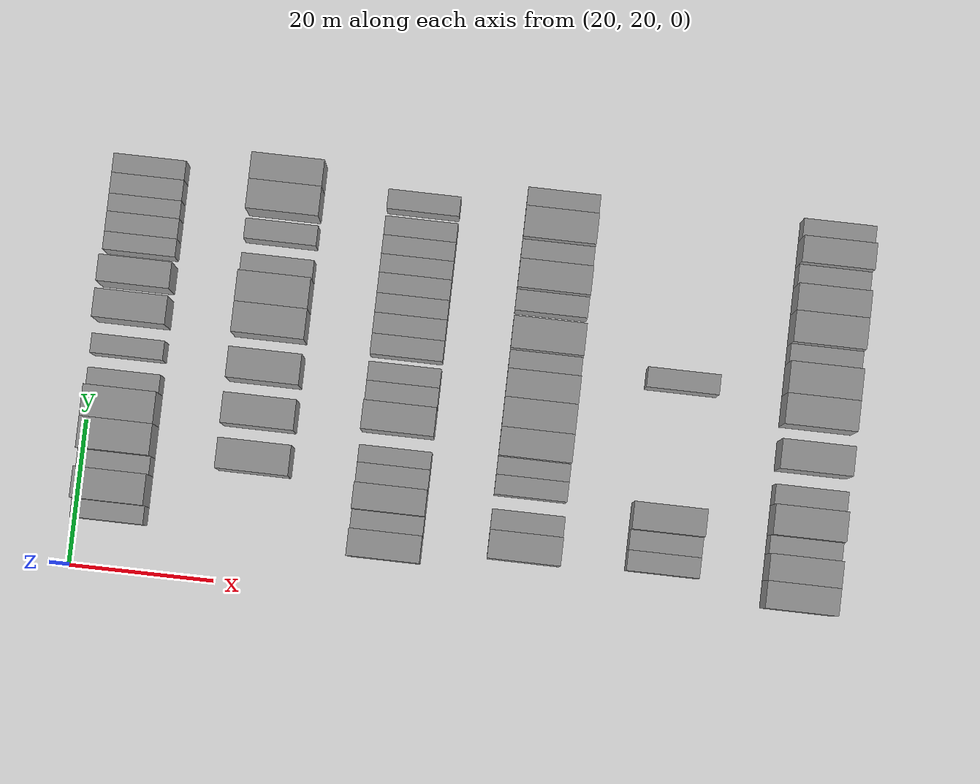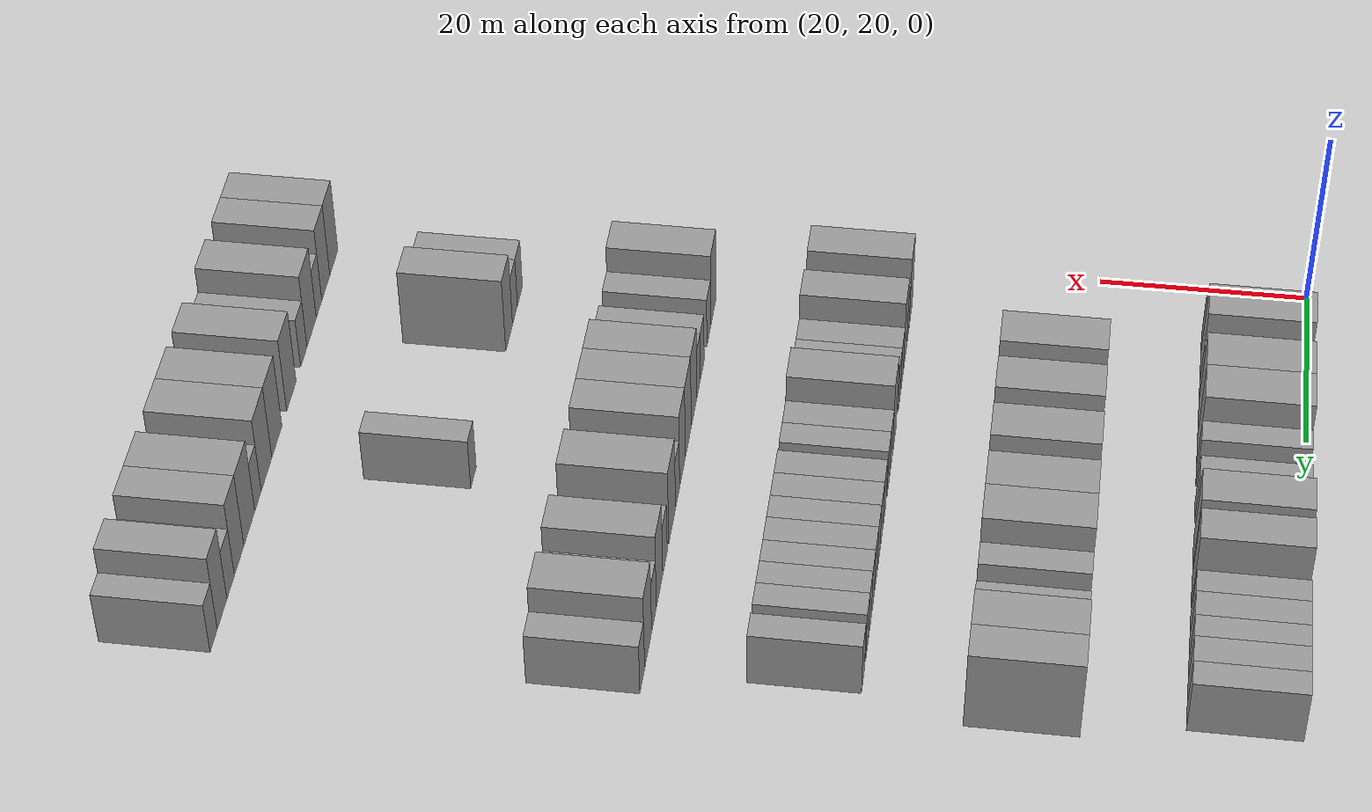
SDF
<sdf version="1.6">
 <world name="default">
  <model name="building_93">
   <static>1</static>
   <pose>25.0000 27.7443 0 0.000000 0.000000 0.000000</pose>
   <link name="link">
    <pose>0 0 3.00 0 0 0</pose>
    <collision name="collision"><geometry><box><size>10.0000 2.5457 6.0000</size></box></geometry></collision>
    <visual name="visual">
     <cast_shadows>0</cast_shadows>
     <geometry><box><size>10.0000 2.5457 6.0000</size></box></geometry>
     <material>
      <script>
       <uri>model://grey_wall/materials/scripts</uri>
       <uri>model://grey_wall/materials/textures</uri>
       <name>vrc/grey_wall</name>
      </script>
     </material>
    </visual>
   </link>
  </model>
  <model name="building_94">
   <static>1</static>
   <pose>25.0000 31.1478 0 0.000000 0.000000 0.000000</pose>
   <link name="link">
    <pose>0 0 4.50 0 0 0</pose>
    <collision name="collision"><geometry><box><size>10.0000 4.2612 9.0000</size></box></geometry></collision>
    <visual name="visual">
     <cast_shadows>0</cast_shadows>
     <geometry><box><size>10.0000 4.2612 9.0000</size></box></geometry>
     <material>
      <script>
       <uri>model://grey_wall/materials/scripts</uri>
       <uri>model://grey_wall/materials/textures</uri>
       <name>vrc/grey_wall</name>
      </script>
     </material>
    </visual>
   </link>
  </model>
  <model name="building_95">
   <static>1</static>
   <pose>25.0000 34.5510 0 0.000000 0.000000 0.000000</pose>
   <link name="link">
    <pose>0 0 3.00 0 0 0</pose>
    <collision name="collision"><geometry><box><size>10.0000 2.5452 6.0000</size></box></geometry></collision>
    <visual name="visual">
     <cast_shadows>0</cast_shadows>
     <geometry><box><size>10.0000 2.5452 6.0000</size></box></geometry>
     <material>
      <script>
       <uri>model://grey_wall/materials/scripts</uri>
       <uri>model://grey_wall/materials/textures</uri>
       <name>vrc/grey_wall</name>
      </script>
     </material>
    </visual>
   </link>
  </model>
  <model name="building_96">
   <static>1</static>
   <pose>25.0000 37.9860 0 0.000000 0.000000 0.000000</pose>
   <link name="link">
    <pose>0 0 4.50 0 0 0</pose>
    <collision name="collision"><geometry><box><size>10.0000 4.3250 9.0000</size></box></geometry></collision>
    <visual name="visual">
     <cast_shadows>0</cast_shadows>
     <geometry><box><size>10.0000 4.3250 9.0000</size></box></geometry>
     <material>
      <script>
       <uri>model://grey_wall/materials/scripts</uri>
       <uri>model://grey_wall/materials/textures</uri>
       <name>vrc/grey_wall</name>
      </script>
     </material>
    </visual>
   </link>
  </model>
  <model name="building_97">
   <static>1</static>
   <pose>25.0000 42.3266 0 0.000000 0.000000 0.000000</pose>
   <link name="link">
    <pose>0 0 4.50 0 0 0</pose>
    <collision name="collision"><geometry><box><size>10.0000 4.3562 9.0000</size></box></geometry></collision>
    <visual name="visual">
     <cast_shadows>0</cast_shadows>
     <geometry><box><size>10.0000 4.3562 9.0000</size></box></geometry>
     <material>
      <script>
       <uri>model://grey_wall/materials/scripts</uri>
       <uri>model://grey_wall/materials/textures</uri>
       <name>vrc/grey_wall</name>
      </script>
     </material>
    </visual>
   </link>
  </model>
  <model name="building_98">
   <static>1</static>
   <pose>25.0000 45.7647 0 0.000000 0.000000 0.000000</pose>
   <link name="link">
    <pose>0 0 3.00 0 0 0</pose>
    <collision name="collision"><geometry><box><size>10.0000 2.5199 6.0000</size></box></geometry></collision>
    <visual name="visual">
     <cast_shadows>0</cast_shadows>
     <geometry><box><size>10.0000 2.5199 6.0000</size></box></geometry>
     <material>
      <script>
       <uri>model://grey_wall/materials/scripts</uri>
       <uri>model://grey_wall/materials/textures</uri>
       <name>vrc/grey_wall</name>
      </script>
     </material>
    </visual>
   </link>
  </model>
  <model name="building_99">
   <static>1</static>
   <pose>25.0000 50.3638 0 0.000000 0.000000 0.000000</pose>
   <link name="link">
    <pose>0 0 3.00 0 0 0</pose>
    <collision name="collision"><geometry><box><size>10.0000 2.6784 6.0000</size></box></geometry></collision>
    <visual name="visual">
     <cast_shadows>0</cast_shadows>
     <geometry><box><size>10.0000 2.6784 6.0000</size></box></geometry>
     <material>
      <script>
       <uri>model://grey_wall/materials/scripts</uri>
       <uri>model://grey_wall/materials/textures</uri>
       <name>vrc/grey_wall</name>
      </script>
     </material>
    </visual>
   </link>
  </model>
  <model name="building_100">
   <static>1</static>
   <pose>25.0000 55.6652 0 0.000000 0.000000 0.000000</pose>
   <link name="link">
    <pose>0 0 4.50 0 0 0</pose>
    <collision name="collision"><geometry><box><size>10.0000 3.9243 9.0000</size></box></geometry></collision>
    <visual name="visual">
     <cast_shadows>0</cast_shadows>
     <geometry><box><size>10.0000 3.9243 9.0000</size></box></geometry>
     <material>
      <script>
       <uri>model://grey_wall/materials/scripts</uri>
       <uri>model://grey_wall/materials/textures</uri>
       <name>vrc/grey_wall</name>
      </script>
     </material>
    </visual>
   </link>
  </model>
  <model name="building_101">
   <static>1</static>
   <pose>25.0000 60.4549 0 0.000000 0.000000 0.000000</pose>
   <link name="link">
    <pose>0 0 4.50 0 0 0</pose>
    <collision name="collision"><geometry><box><size>10.0000 3.6550 9.0000</size></box></geometry></collision>
    <visual name="visual">
     <cast_shadows>0</cast_shadows>
     <geometry><box><size>10.0000 3.6550 9.0000</size></box></geometry>
     <material>
      <script>
       <uri>model://grey_wall/materials/scripts</uri>
       <uri>model://grey_wall/materials/textures</uri>
       <name>vrc/grey_wall</name>
      </script>
     </material>
    </visual>
   </link>
  </model>
  <model name="building_102">
   <static>1</static>
   <pose>25.0000 64.5301 0 0.000000 0.000000 0.000000</pose>
   <link name="link">
    <pose>0 0 3.00 0 0 0</pose>
    <collision name="collision"><geometry><box><size>10.0000 2.4954 6.0000</size></box></geometry></collision>
    <visual name="visual">
     <cast_shadows>0</cast_shadows>
     <geometry><box><size>10.0000 2.4954 6.0000</size></box></geometry>
     <material>
      <script>
       <uri>model://grey_wall/materials/scripts</uri>
       <uri>model://grey_wall/materials/textures</uri>
       <name>vrc/grey_wall</name>
      </script>
     </material>
    </visual>
   </link>
  </model>
  <model name="building_103">
   <static>1</static>
   <pose>25.0000 67.1800 0 0.000000 0.000000 0.000000</pose>
   <link name="link">
    <pose>0 0 3.00 0 0 0</pose>
    <collision name="collision"><geometry><box><size>10.0000 2.8044 6.0000</size></box></geometry></collision>
    <visual name="visual">
     <cast_shadows>0</cast_shadows>
     <geometry><box><size>10.0000 2.8044 6.0000</size></box></geometry>
     <material>
      <script>
       <uri>model://grey_wall/materials/scripts</uri>
       <uri>model://grey_wall/materials/textures</uri>
       <name>vrc/grey_wall</name>
      </script>
     </material>
    </visual>
   </link>
  </model>
  <model name="building_104">
   <static>1</static>
   <pose>25.0000 69.8176 0 0.000000 0.000000 0.000000</pose>
   <link name="link">
    <pose>0 0 3.00 0 0 0</pose>
    <collision name="collision"><geometry><box><size>10.0000 2.4708 6.0000</size></box></geometry></collision>
    <visual name="visual">
     <cast_shadows>0</cast_shadows>
     <geometry><box><size>10.0000 2.4708 6.0000</size></box></geometry>
     <material>
      <script>
       <uri>model://grey_wall/materials/scripts</uri>
       <uri>model://grey_wall/materials/textures</uri>
       <name>vrc/grey_wall</name>
      </script>
     </material>
    </visual>
   </link>
  </model>
  <model name="building_105">
   <static>1</static>
   <pose>25.0000 72.4979 0 0.000000 0.000000 0.000000</pose>
   <link name="link">
    <pose>0 0 3.00 0 0 0</pose>
    <collision name="collision"><geometry><box><size>10.0000 2.8897 6.0000</size></box></geometry></collision>
    <visual name="visual">
     <cast_shadows>0</cast_shadows>
     <geometry><box><size>10.0000 2.8897 6.0000</size></box></geometry>
     <material>
      <script>
       <uri>model://grey_wall/materials/scripts</uri>
       <uri>model://grey_wall/materials/textures</uri>
       <name>vrc/grey_wall</name>
      </script>
     </material>
    </visual>
   </link>
  </model>
  <model name="building_106">
   <static>1</static>
   <pose>25.0000 75.2765 0 0.000000 0.000000 0.000000</pose>
   <link name="link">
    <pose>0 0 3.00 0 0 0</pose>
    <collision name="collision"><geometry><box><size>10.0000 2.6674 6.0000</size></box></geometry></collision>
    <visual name="visual">
     <cast_shadows>0</cast_shadows>
     <geometry><box><size>10.0000 2.6674 6.0000</size></box></geometry>
     <material>
      <script>
       <uri>model://grey_wall/materials/scripts</uri>
       <uri>model://grey_wall/materials/textures</uri>
       <name>vrc/grey_wall</name>
      </script>
     </material>
    </visual>
   </link>
  </model>
  <model name="building_273">
   <static>1</static>
   <pose>44.0000 37.2610 0 0.000000 0.000000 0.000000</pose>
   <link name="link">
    <pose>0 0 4.50 0 0 0</pose>
    <collision name="collision"><geometry><box><size>10.0000 4.1962 9.0000</size></box></geometry></collision>
    <visual name="visual">
     <cast_shadows>0</cast_shadows>
     <geometry><box><size>10.0000 4.1962 9.0000</size></box></geometry>
     <material>
      <script>
       <uri>model://grey_wall/materials/scripts</uri>
       <uri>model://grey_wall/materials/textures</uri>
       <name>vrc/grey_wall</name>
      </script>
     </material>
    </visual>
   </link>
  </model>
  <model name="building_274">
   <static>1</static>
   <pose>44.0000 43.4618 0 0.000000 0.000000 0.000000</pose>
   <link name="link">
    <pose>0 0 4.50 0 0 0</pose>
    <collision name="collision"><geometry><box><size>10.0000 4.2055 9.0000</size></box></geometry></collision>
    <visual name="visual">
     <cast_shadows>0</cast_shadows>
     <geometry><box><size>10.0000 4.2055 9.0000</size></box></geometry>
     <material>
      <script>
       <uri>model://grey_wall/materials/scripts</uri>
       <uri>model://grey_wall/materials/textures</uri>
       <name>vrc/grey_wall</name>
      </script>
     </material>
    </visual>
   </link>
  </model>
  <model name="building_275">
   <static>1</static>
   <pose>44.0000 49.6815 0 0.000000 0.000000 0.000000</pose>
   <link name="link">
    <pose>0 0 4.50 0 0 0</pose>
    <collision name="collision"><geometry><box><size>10.0000 4.2341 9.0000</size></box></geometry></collision>
    <visual name="visual">
     <cast_shadows>0</cast_shadows>
     <geometry><box><size>10.0000 4.2341 9.0000</size></box></geometry>
     <material>
      <script>
       <uri>model://grey_wall/materials/scripts</uri>
       <uri>model://grey_wall/materials/textures</uri>
       <name>vrc/grey_wall</name>
      </script>
     </material>
    </visual>
   </link>
  </model>
  <model name="building_276">
   <static>1</static>
   <pose>44.0000 55.8992 0 0.000000 0.000000 0.000000</pose>
   <link name="link">
    <pose>0 0 4.50 0 0 0</pose>
    <collision name="collision"><geometry><box><size>10.0000 4.2013 9.0000</size></box></geometry></collision>
    <visual name="visual">
     <cast_shadows>0</cast_shadows>
     <geometry><box><size>10.0000 4.2013 9.0000</size></box></geometry>
     <material>
      <script>
       <uri>model://grey_wall/materials/scripts</uri>
       <uri>model://grey_wall/materials/textures</uri>
       <name>vrc/grey_wall</name>
      </script>
     </material>
    </visual>
   </link>
  </model>
  <model name="building_277">
   <static>1</static>
   <pose>44.0000 60.1384 0 0.000000 0.000000 0.000000</pose>
   <link name="link">
    <pose>0 0 4.50 0 0 0</pose>
    <collision name="collision"><geometry><box><size>10.0000 4.2772 9.0000</size></box></geometry></collision>
    <visual name="visual">
     <cast_shadows>0</cast_shadows>
     <geometry><box><size>10.0000 4.2772 9.0000</size></box></geometry>
     <material>
      <script>
       <uri>model://grey_wall/materials/scripts</uri>
       <uri>model://grey_wall/materials/textures</uri>
       <name>vrc/grey_wall</name>
      </script>
     </material>
    </visual>
   </link>
  </model>
  <model name="building_278">
   <static>1</static>
   <pose>44.0000 63.6222 0 0.000000 0.000000 0.000000</pose>
   <link name="link">
    <pose>0 0 3.00 0 0 0</pose>
    <collision name="collision"><geometry><box><size>10.0000 2.6903 6.0000</size></box></geometry></collision>
    <visual name="visual">
     <cast_shadows>0</cast_shadows>
     <geometry><box><size>10.0000 2.6903 6.0000</size></box></geometry>
     <material>
      <script>
       <uri>model://grey_wall/materials/scripts</uri>
       <uri>model://grey_wall/materials/textures</uri>
       <name>vrc/grey_wall</name>
      </script>
     </material>
    </visual>
   </link>
  </model>
  <model name="building_279">
   <static>1</static>
   <pose>44.0000 68.3635 0 0.000000 0.000000 0.000000</pose>
   <link name="link">
    <pose>0 0 3.00 0 0 0</pose>
    <collision name="collision"><geometry><box><size>10.0000 2.7923 6.0000</size></box></geometry></collision>
    <visual name="visual">
     <cast_shadows>0</cast_shadows>
     <geometry><box><size>10.0000 2.7923 6.0000</size></box></geometry>
     <material>
      <script>
       <uri>model://grey_wall/materials/scripts</uri>
       <uri>model://grey_wall/materials/textures</uri>
       <name>vrc/grey_wall</name>
      </script>
     </material>
    </visual>
   </link>
  </model>
  <model name="building_280">
   <static>1</static>
   <pose>44.0000 72.7982 0 0.000000 0.000000 0.000000</pose>
   <link name="link">
    <pose>0 0 4.50 0 0 0</pose>
    <collision name="collision"><geometry><box><size>10.0000 4.0771 9.0000</size></box></geometry></collision>
    <visual name="visual">
     <cast_shadows>0</cast_shadows>
     <geometry><box><size>10.0000 4.0771 9.0000</size></box></geometry>
     <material>
      <script>
       <uri>model://grey_wall/materials/scripts</uri>
       <uri>model://grey_wall/materials/textures</uri>
       <name>vrc/grey_wall</name>
      </script>
     </material>
    </visual>
   </link>
  </model>
  <model name="building_281">
   <static>1</static>
   <pose>44.0000 76.6712 0 0.000000 0.000000 0.000000</pose>
   <link name="link">
    <pose>0 0 4.50 0 0 0</pose>
    <collision name="collision"><geometry><box><size>10.0000 3.6688 9.0000</size></box></geometry></collision>
    <visual name="visual">
     <cast_shadows>0</cast_shadows>
     <geometry><box><size>10.0000 3.6688 9.0000</size></box></geometry>
     <material>
      <script>
       <uri>model://grey_wall/materials/scripts</uri>
       <uri>model://grey_wall/materials/textures</uri>
       <name>vrc/grey_wall</name>
      </script>
     </material>
    </visual>
   </link>
  </model>
  <model name="building_453">
   <static>1</static>
   <pose>63.0000 27.2914 0 0.000000 0.000000 0.000000</pose>
   <link name="link">
    <pose>0 0 4.50 0 0 0</pose>
    <collision name="collision"><geometry><box><size>10.0000 3.7400 9.0000</size></box></geometry></collision>
    <visual name="visual">
     <cast_shadows>0</cast_shadows>
     <geometry><box><size>10.0000 3.7400 9.0000</size></box></geometry>
     <material>
      <script>
       <uri>model://grey_wall/materials/scripts</uri>
       <uri>model://grey_wall/materials/textures</uri>
       <name>vrc/grey_wall</name>
      </script>
     </material>
    </visual>
   </link>
  </model>
  <model name="building_454">
   <static>1</static>
   <pose>63.0000 30.4856 0 0.000000 0.000000 0.000000</pose>
   <link name="link">
    <pose>0 0 3.00 0 0 0</pose>
    <collision name="collision"><geometry><box><size>10.0000 2.6486 6.0000</size></box></geometry></collision>
    <visual name="visual">
     <cast_shadows>0</cast_shadows>
     <geometry><box><size>10.0000 2.6486 6.0000</size></box></geometry>
     <material>
      <script>
       <uri>model://grey_wall/materials/scripts</uri>
       <uri>model://grey_wall/materials/textures</uri>
       <name>vrc/grey_wall</name>
      </script>
     </material>
    </visual>
   </link>
  </model>
  <model name="building_455">
   <static>1</static>
   <pose>63.0000 33.6200 0 0.000000 0.000000 0.000000</pose>
   <link name="link">
    <pose>0 0 4.50 0 0 0</pose>
    <collision name="collision"><geometry><box><size>10.0000 3.6201 9.0000</size></box></geometry></collision>
    <visual name="visual">
     <cast_shadows>0</cast_shadows>
     <geometry><box><size>10.0000 3.6201 9.0000</size></box></geometry>
     <material>
      <script>
       <uri>model://grey_wall/materials/scripts</uri>
       <uri>model://grey_wall/materials/textures</uri>
       <name>vrc/grey_wall</name>
      </script>
     </material>
    </visual>
   </link>
  </model>
  <model name="building_456">
   <static>1</static>
   <pose>63.0000 36.8506 0 0.000000 0.000000 0.000000</pose>
   <link name="link">
    <pose>0 0 3.00 0 0 0</pose>
    <collision name="collision"><geometry><box><size>10.0000 2.8411 6.0000</size></box></geometry></collision>
    <visual name="visual">
     <cast_shadows>0</cast_shadows>
     <geometry><box><size>10.0000 2.8411 6.0000</size></box></geometry>
     <material>
      <script>
       <uri>model://grey_wall/materials/scripts</uri>
       <uri>model://grey_wall/materials/textures</uri>
       <name>vrc/grey_wall</name>
      </script>
     </material>
    </visual>
   </link>
  </model>
  <model name="building_457">
   <static>1</static>
   <pose>63.0000 39.4727 0 0.000000 0.000000 0.000000</pose>
   <link name="link">
    <pose>0 0 3.00 0 0 0</pose>
    <collision name="collision"><geometry><box><size>10.0000 2.4032 6.0000</size></box></geometry></collision>
    <visual name="visual">
     <cast_shadows>0</cast_shadows>
     <geometry><box><size>10.0000 2.4032 6.0000</size></box></geometry>
     <material>
      <script>
       <uri>model://grey_wall/materials/scripts</uri>
       <uri>model://grey_wall/materials/textures</uri>
       <name>vrc/grey_wall</name>
      </script>
     </material>
    </visual>
   </link>
  </model>
  <model name="building_458">
   <static>1</static>
   <pose>63.0000 44.6561 0 0.000000 0.000000 0.000000</pose>
   <link name="link">
    <pose>0 0 4.50 0 0 0</pose>
    <collision name="collision"><geometry><box><size>10.0000 3.9635 9.0000</size></box></geometry></collision>
    <visual name="visual">
     <cast_shadows>0</cast_shadows>
     <geometry><box><size>10.0000 3.9635 9.0000</size></box></geometry>
     <material>
      <script>
       <uri>model://grey_wall/materials/scripts</uri>
       <uri>model://grey_wall/materials/textures</uri>
       <name>vrc/grey_wall</name>
      </script>
     </material>
    </visual>
   </link>
  </model>
  <model name="building_459">
   <static>1</static>
   <pose>63.0000 48.0695 0 0.000000 0.000000 0.000000</pose>
   <link name="link">
    <pose>0 0 3.00 0 0 0</pose>
    <collision name="collision"><geometry><box><size>10.0000 2.8632 6.0000</size></box></geometry></collision>
    <visual name="visual">
     <cast_shadows>0</cast_shadows>
     <geometry><box><size>10.0000 2.8632 6.0000</size></box></geometry>
     <material>
      <script>
       <uri>model://grey_wall/materials/scripts</uri>
       <uri>model://grey_wall/materials/textures</uri>
       <name>vrc/grey_wall</name>
      </script>
     </material>
    </visual>
   </link>
  </model>
  <model name="building_460">
   <static>1</static>
   <pose>63.0000 50.8109 0 0.000000 0.000000 0.000000</pose>
   <link name="link">
    <pose>0 0 3.00 0 0 0</pose>
    <collision name="collision"><geometry><box><size>10.0000 2.6197 6.0000</size></box></geometry></collision>
    <visual name="visual">
     <cast_shadows>0</cast_shadows>
     <geometry><box><size>10.0000 2.6197 6.0000</size></box></geometry>
     <material>
      <script>
       <uri>model://grey_wall/materials/scripts</uri>
       <uri>model://grey_wall/materials/textures</uri>
       <name>vrc/grey_wall</name>
      </script>
     </material>
    </visual>
   </link>
  </model>
  <model name="building_461">
   <static>1</static>
   <pose>63.0000 54.5580 0 0.000000 0.000000 0.000000</pose>
   <link name="link">
    <pose>0 0 3.00 0 0 0</pose>
    <collision name="collision"><geometry><box><size>10.0000 2.8744 6.0000</size></box></geometry></collision>
    <visual name="visual">
     <cast_shadows>0</cast_shadows>
     <geometry><box><size>10.0000 2.8744 6.0000</size></box></geometry>
     <material>
      <script>
       <uri>model://grey_wall/materials/scripts</uri>
       <uri>model://grey_wall/materials/textures</uri>
       <name>vrc/grey_wall</name>
      </script>
     </material>
    </visual>
   </link>
  </model>
  <model name="building_462">
   <static>1</static>
   <pose>63.0000 57.4362 0 0.000000 0.000000 0.000000</pose>
   <link name="link">
    <pose>0 0 3.00 0 0 0</pose>
    <collision name="collision"><geometry><box><size>10.0000 2.8820 6.0000</size></box></geometry></collision>
    <visual name="visual">
     <cast_shadows>0</cast_shadows>
     <geometry><box><size>10.0000 2.8820 6.0000</size></box></geometry>
     <material>
      <script>
       <uri>model://grey_wall/materials/scripts</uri>
       <uri>model://grey_wall/materials/textures</uri>
       <name>vrc/grey_wall</name>
      </script>
     </material>
    </visual>
   </link>
  </model>
  <model name="building_463">
   <static>1</static>
   <pose>63.0000 60.2301 0 0.000000 0.000000 0.000000</pose>
   <link name="link">
    <pose>0 0 3.00 0 0 0</pose>
    <collision name="collision"><geometry><box><size>10.0000 2.7058 6.0000</size></box></geometry></collision>
    <visual name="visual">
     <cast_shadows>0</cast_shadows>
     <geometry><box><size>10.0000 2.7058 6.0000</size></box></geometry>
     <material>
      <script>
       <uri>model://grey_wall/materials/scripts</uri>
       <uri>model://grey_wall/materials/textures</uri>
       <name>vrc/grey_wall</name>
      </script>
     </material>
    </visual>
   </link>
  </model>
  <model name="building_464">
   <static>1</static>
   <pose>63.0000 62.9954 0 0.000000 0.000000 0.000000</pose>
   <link name="link">
    <pose>0 0 3.00 0 0 0</pose>
    <collision name="collision"><geometry><box><size>10.0000 2.8249 6.0000</size></box></geometry></collision>
    <visual name="visual">
     <cast_shadows>0</cast_shadows>
     <geometry><box><size>10.0000 2.8249 6.0000</size></box></geometry>
     <material>
      <script>
       <uri>model://grey_wall/materials/scripts</uri>
       <uri>model://grey_wall/materials/textures</uri>
       <name>vrc/grey_wall</name>
      </script>
     </material>
    </visual>
   </link>
  </model>
  <model name="building_465">
   <static>1</static>
   <pose>63.0000 65.6941 0 0.000000 0.000000 0.000000</pose>
   <link name="link">
    <pose>0 0 3.00 0 0 0</pose>
    <collision name="collision"><geometry><box><size>10.0000 2.5725 6.0000</size></box></geometry></collision>
    <visual name="visual">
     <cast_shadows>0</cast_shadows>
     <geometry><box><size>10.0000 2.5725 6.0000</size></box></geometry>
     <material>
      <script>
       <uri>model://grey_wall/materials/scripts</uri>
       <uri>model://grey_wall/materials/textures</uri>
       <name>vrc/grey_wall</name>
      </script>
     </material>
    </visual>
   </link>
  </model>
  <model name="building_466">
   <static>1</static>
   <pose>63.0000 68.2875 0 0.000000 0.000000 0.000000</pose>
   <link name="link">
    <pose>0 0 3.00 0 0 0</pose>
    <collision name="collision"><geometry><box><size>10.0000 2.6143 6.0000</size></box></geometry></collision>
    <visual name="visual">
     <cast_shadows>0</cast_shadows>
     <geometry><box><size>10.0000 2.6143 6.0000</size></box></geometry>
     <material>
      <script>
       <uri>model://grey_wall/materials/scripts</uri>
       <uri>model://grey_wall/materials/textures</uri>
       <name>vrc/grey_wall</name>
      </script>
     </material>
    </visual>
   </link>
  </model>
  <model name="building_467">
   <static>1</static>
   <pose>63.0000 70.8988 0 0.000000 0.000000 0.000000</pose>
   <link name="link">
    <pose>0 0 3.00 0 0 0</pose>
    <collision name="collision"><geometry><box><size>10.0000 2.6081 6.0000</size></box></geometry></collision>
    <visual name="visual">
     <cast_shadows>0</cast_shadows>
     <geometry><box><size>10.0000 2.6081 6.0000</size></box></geometry>
     <material>
      <script>
       <uri>model://grey_wall/materials/scripts</uri>
       <uri>model://grey_wall/materials/textures</uri>
       <name>vrc/grey_wall</name>
      </script>
     </material>
    </visual>
   </link>
  </model>
  <model name="building_468">
   <static>1</static>
   <pose>63.0000 74.5586 0 0.000000 0.000000 0.000000</pose>
   <link name="link">
    <pose>0 0 3.00 0 0 0</pose>
    <collision name="collision"><geometry><box><size>10.0000 2.7117 6.0000</size></box></geometry></collision>
    <visual name="visual">
     <cast_shadows>0</cast_shadows>
     <geometry><box><size>10.0000 2.7117 6.0000</size></box></geometry>
     <material>
      <script>
       <uri>model://grey_wall/materials/scripts</uri>
       <uri>model://grey_wall/materials/textures</uri>
       <name>vrc/grey_wall</name>
      </script>
     </material>
    </visual>
   </link>
  </model>
  <model name="building_641">
   <static>1</static>
   <pose>82.0000 29.1589 0 0.000000 0.000000 0.000000</pose>
   <link name="link">
    <pose>0 0 4.50 0 0 0</pose>
    <collision name="collision"><geometry><box><size>10.0000 3.9074 9.0000</size></box></geometry></collision>
    <visual name="visual">
     <cast_shadows>0</cast_shadows>
     <geometry><box><size>10.0000 3.9074 9.0000</size></box></geometry>
     <material>
      <script>
       <uri>model://grey_wall/materials/scripts</uri>
       <uri>model://grey_wall/materials/textures</uri>
       <name>vrc/grey_wall</name>
      </script>
     </material>
    </visual>
   </link>
  </model>
  <model name="building_642">
   <static>1</static>
   <pose>82.0000 32.5577 0 0.000000 0.000000 0.000000</pose>
   <link name="link">
    <pose>0 0 3.00 0 0 0</pose>
    <collision name="collision"><geometry><box><size>10.0000 2.8900 6.0000</size></box></geometry></collision>
    <visual name="visual">
     <cast_shadows>0</cast_shadows>
     <geometry><box><size>10.0000 2.8900 6.0000</size></box></geometry>
     <material>
      <script>
       <uri>model://grey_wall/materials/scripts</uri>
       <uri>model://grey_wall/materials/textures</uri>
       <name>vrc/grey_wall</name>
      </script>
     </material>
    </visual>
   </link>
  </model>
  <model name="building_643">
   <static>1</static>
   <pose>82.0000 37.3732 0 0.000000 0.000000 0.000000</pose>
   <link name="link">
    <pose>0 0 3.00 0 0 0</pose>
    <collision name="collision"><geometry><box><size>10.0000 2.7411 6.0000</size></box></geometry></collision>
    <visual name="visual">
     <cast_shadows>0</cast_shadows>
     <geometry><box><size>10.0000 2.7411 6.0000</size></box></geometry>
     <material>
      <script>
       <uri>model://grey_wall/materials/scripts</uri>
       <uri>model://grey_wall/materials/textures</uri>
       <name>vrc/grey_wall</name>
      </script>
     </material>
    </visual>
   </link>
  </model>
  <model name="building_644">
   <static>1</static>
   <pose>82.0000 39.9740 0 0.000000 0.000000 0.000000</pose>
   <link name="link">
    <pose>0 0 3.00 0 0 0</pose>
    <collision name="collision"><geometry><box><size>10.0000 2.4605 6.0000</size></box></geometry></collision>
    <visual name="visual">
     <cast_shadows>0</cast_shadows>
     <geometry><box><size>10.0000 2.4605 6.0000</size></box></geometry>
     <material>
      <script>
       <uri>model://grey_wall/materials/scripts</uri>
       <uri>model://grey_wall/materials/textures</uri>
       <name>vrc/grey_wall</name>
      </script>
     </material>
    </visual>
   </link>
  </model>
  <model name="building_645">
   <static>1</static>
   <pose>82.0000 43.1719 0 0.000000 0.000000 0.000000</pose>
   <link name="link">
    <pose>0 0 4.50 0 0 0</pose>
    <collision name="collision"><geometry><box><size>10.0000 3.9352 9.0000</size></box></geometry></collision>
    <visual name="visual">
     <cast_shadows>0</cast_shadows>
     <geometry><box><size>10.0000 3.9352 9.0000</size></box></geometry>
     <material>
      <script>
       <uri>model://grey_wall/materials/scripts</uri>
       <uri>model://grey_wall/materials/textures</uri>
       <name>vrc/grey_wall</name>
      </script>
     </material>
    </visual>
   </link>
  </model>
  <model name="building_646">
   <static>1</static>
   <pose>82.0000 47.1830 0 0.000000 0.000000 0.000000</pose>
   <link name="link">
    <pose>0 0 4.50 0 0 0</pose>
    <collision name="collision"><geometry><box><size>10.0000 4.0870 9.0000</size></box></geometry></collision>
    <visual name="visual">
     <cast_shadows>0</cast_shadows>
     <geometry><box><size>10.0000 4.0870 9.0000</size></box></geometry>
     <material>
      <script>
       <uri>model://grey_wall/materials/scripts</uri>
       <uri>model://grey_wall/materials/textures</uri>
       <name>vrc/grey_wall</name>
      </script>
     </material>
    </visual>
   </link>
  </model>
  <model name="building_647">
   <static>1</static>
   <pose>82.0000 51.1674 0 0.000000 0.000000 0.000000</pose>
   <link name="link">
    <pose>0 0 4.50 0 0 0</pose>
    <collision name="collision"><geometry><box><size>10.0000 3.8818 9.0000</size></box></geometry></collision>
    <visual name="visual">
     <cast_shadows>0</cast_shadows>
     <geometry><box><size>10.0000 3.8818 9.0000</size></box></geometry>
     <material>
      <script>
       <uri>model://grey_wall/materials/scripts</uri>
       <uri>model://grey_wall/materials/textures</uri>
       <name>vrc/grey_wall</name>
      </script>
     </material>
    </visual>
   </link>
  </model>
  <model name="building_648">
   <static>1</static>
   <pose>82.0000 54.4906 0 0.000000 0.000000 0.000000</pose>
   <link name="link">
    <pose>0 0 3.00 0 0 0</pose>
    <collision name="collision"><geometry><box><size>10.0000 2.7648 6.0000</size></box></geometry></collision>
    <visual name="visual">
     <cast_shadows>0</cast_shadows>
     <geometry><box><size>10.0000 2.7648 6.0000</size></box></geometry>
     <material>
      <script>
       <uri>model://grey_wall/materials/scripts</uri>
       <uri>model://grey_wall/materials/textures</uri>
       <name>vrc/grey_wall</name>
      </script>
     </material>
    </visual>
   </link>
  </model>
  <model name="building_649">
   <static>1</static>
   <pose>82.0000 58.0892 0 0.000000 0.000000 0.000000</pose>
   <link name="link">
    <pose>0 0 4.50 0 0 0</pose>
    <collision name="collision"><geometry><box><size>10.0000 4.4324 9.0000</size></box></geometry></collision>
    <visual name="visual">
     <cast_shadows>0</cast_shadows>
     <geometry><box><size>10.0000 4.4324 9.0000</size></box></geometry>
     <material>
      <script>
       <uri>model://grey_wall/materials/scripts</uri>
       <uri>model://grey_wall/materials/textures</uri>
       <name>vrc/grey_wall</name>
      </script>
     </material>
    </visual>
   </link>
  </model>
  <model name="building_650">
   <static>1</static>
   <pose>82.0000 62.7515 0 0.000000 0.000000 0.000000</pose>
   <link name="link">
    <pose>0 0 3.00 0 0 0</pose>
    <collision name="collision"><geometry><box><size>10.0000 2.8923 6.0000</size></box></geometry></collision>
    <visual name="visual">
     <cast_shadows>0</cast_shadows>
     <geometry><box><size>10.0000 2.8923 6.0000</size></box></geometry>
     <material>
      <script>
       <uri>model://grey_wall/materials/scripts</uri>
       <uri>model://grey_wall/materials/textures</uri>
       <name>vrc/grey_wall</name>
      </script>
     </material>
    </visual>
   </link>
  </model>
  <model name="building_651">
   <static>1</static>
   <pose>82.0000 66.1894 0 0.000000 0.000000 0.000000</pose>
   <link name="link">
    <pose>0 0 4.50 0 0 0</pose>
    <collision name="collision"><geometry><box><size>10.0000 3.9835 9.0000</size></box></geometry></collision>
    <visual name="visual">
     <cast_shadows>0</cast_shadows>
     <geometry><box><size>10.0000 3.9835 9.0000</size></box></geometry>
     <material>
      <script>
       <uri>model://grey_wall/materials/scripts</uri>
       <uri>model://grey_wall/materials/textures</uri>
       <name>vrc/grey_wall</name>
      </script>
     </material>
    </visual>
   </link>
  </model>
  <model name="building_652">
   <static>1</static>
   <pose>82.0000 69.6668 0 0.000000 0.000000 0.000000</pose>
   <link name="link">
    <pose>0 0 3.00 0 0 0</pose>
    <collision name="collision"><geometry><box><size>10.0000 2.9712 6.0000</size></box></geometry></collision>
    <visual name="visual">
     <cast_shadows>0</cast_shadows>
     <geometry><box><size>10.0000 2.9712 6.0000</size></box></geometry>
     <material>
      <script>
       <uri>model://grey_wall/materials/scripts</uri>
       <uri>model://grey_wall/materials/textures</uri>
       <name>vrc/grey_wall</name>
      </script>
     </material>
    </visual>
   </link>
  </model>
  <model name="building_653">
   <static>1</static>
   <pose>82.0000 73.2908 0 0.000000 0.000000 0.000000</pose>
   <link name="link">
    <pose>0 0 4.50 0 0 0</pose>
    <collision name="collision"><geometry><box><size>10.0000 4.2769 9.0000</size></box></geometry></collision>
    <visual name="visual">
     <cast_shadows>0</cast_shadows>
     <geometry><box><size>10.0000 4.2769 9.0000</size></box></geometry>
     <material>
      <script>
       <uri>model://grey_wall/materials/scripts</uri>
       <uri>model://grey_wall/materials/textures</uri>
       <name>vrc/grey_wall</name>
      </script>
     </material>
    </visual>
   </link>
  </model>
  <model name="building_654">
   <static>1</static>
   <pose>82.0000 76.8844 0 0.000000 0.000000 0.000000</pose>
   <link name="link">
    <pose>0 0 3.00 0 0 0</pose>
    <collision name="collision"><geometry><box><size>10.0000 2.9103 6.0000</size></box></geometry></collision>
    <visual name="visual">
     <cast_shadows>0</cast_shadows>
     <geometry><box><size>10.0000 2.9103 6.0000</size></box></geometry>
     <material>
      <script>
       <uri>model://grey_wall/materials/scripts</uri>
       <uri>model://grey_wall/materials/textures</uri>
       <name>vrc/grey_wall</name>
      </script>
     </material>
    </visual>
   </link>
  </model>
  <model name="building_819">
   <static>1</static>
   <pose>101.0000 29.1254 0 0.000000 0.000000 0.000000</pose>
   <link name="link">
    <pose>0 0 3.00 0 0 0</pose>
    <collision name="collision"><geometry><box><size>10.0000 2.8334 6.0000</size></box></geometry></collision>
    <visual name="visual">
     <cast_shadows>0</cast_shadows>
     <geometry><box><size>10.0000 2.8334 6.0000</size></box></geometry>
     <material>
      <script>
       <uri>model://grey_wall/materials/scripts</uri>
       <uri>model://grey_wall/materials/textures</uri>
       <name>vrc/grey_wall</name>
      </script>
     </material>
    </visual>
   </link>
  </model>
  <model name="building_820">
   <static>1</static>
   <pose>101.0000 31.9287 0 0.000000 0.000000 0.000000</pose>
   <link name="link">
    <pose>0 0 3.00 0 0 0</pose>
    <collision name="collision"><geometry><box><size>10.0000 2.7732 6.0000</size></box></geometry></collision>
    <visual name="visual">
     <cast_shadows>0</cast_shadows>
     <geometry><box><size>10.0000 2.7732 6.0000</size></box></geometry>
     <material>
      <script>
       <uri>model://grey_wall/materials/scripts</uri>
       <uri>model://grey_wall/materials/textures</uri>
       <name>vrc/grey_wall</name>
      </script>
     </material>
    </visual>
   </link>
  </model>
  <model name="building_821">
   <static>1</static>
   <pose>101.0000 35.2038 0 0.000000 0.000000 0.000000</pose>
   <link name="link">
    <pose>0 0 4.50 0 0 0</pose>
    <collision name="collision"><geometry><box><size>10.0000 3.7769 9.0000</size></box></geometry></collision>
    <visual name="visual">
     <cast_shadows>0</cast_shadows>
     <geometry><box><size>10.0000 3.7769 9.0000</size></box></geometry>
     <material>
      <script>
       <uri>model://grey_wall/materials/scripts</uri>
       <uri>model://grey_wall/materials/textures</uri>
       <name>vrc/grey_wall</name>
      </script>
     </material>
    </visual>
   </link>
  </model>
  <model name="building_822">
   <static>1</static>
   <pose>101.0000 54.2547 0 0.000000 0.000000 0.000000</pose>
   <link name="link">
    <pose>0 0 3.00 0 0 0</pose>
    <collision name="collision"><geometry><box><size>10.0000 2.7750 6.0000</size></box></geometry></collision>
    <visual name="visual">
     <cast_shadows>0</cast_shadows>
     <geometry><box><size>10.0000 2.7750 6.0000</size></box></geometry>
     <material>
      <script>
       <uri>model://grey_wall/materials/scripts</uri>
       <uri>model://grey_wall/materials/textures</uri>
       <name>vrc/grey_wall</name>
      </script>
     </material>
    </visual>
   </link>
  </model>
  <model name="building_985">
   <static>1</static>
   <pose>120.0000 26.5953 0 0.000000 0.000000 0.000000</pose>
   <link name="link">
    <pose>0 0 4.50 0 0 0</pose>
    <collision name="collision"><geometry><box><size>10.0000 3.7649 9.0000</size></box></geometry></collision>
    <visual name="visual">
     <cast_shadows>0</cast_shadows>
     <geometry><box><size>10.0000 3.7649 9.0000</size></box></geometry>
     <material>
      <script>
       <uri>model://grey_wall/materials/scripts</uri>
       <uri>model://grey_wall/materials/textures</uri>
       <name>vrc/grey_wall</name>
      </script>
     </material>
    </visual>
   </link>
  </model>
  <model name="building_986">
   <static>1</static>
   <pose>120.0000 30.3191 0 0.000000 0.000000 0.000000</pose>
   <link name="link">
    <pose>0 0 4.50 0 0 0</pose>
    <collision name="collision"><geometry><box><size>10.0000 3.6825 9.0000</size></box></geometry></collision>
    <visual name="visual">
     <cast_shadows>0</cast_shadows>
     <geometry><box><size>10.0000 3.6825 9.0000</size></box></geometry>
     <material>
      <script>
       <uri>model://grey_wall/materials/scripts</uri>
       <uri>model://grey_wall/materials/textures</uri>
       <name>vrc/grey_wall</name>
      </script>
     </material>
    </visual>
   </link>
  </model>
  <model name="building_987">
   <static>1</static>
   <pose>120.0000 33.4351 0 0.000000 0.000000 0.000000</pose>
   <link name="link">
    <pose>0 0 3.00 0 0 0</pose>
    <collision name="collision"><geometry><box><size>10.0000 2.5495 6.0000</size></box></geometry></collision>
    <visual name="visual">
     <cast_shadows>0</cast_shadows>
     <geometry><box><size>10.0000 2.5495 6.0000</size></box></geometry>
     <material>
      <script>
       <uri>model://grey_wall/materials/scripts</uri>
       <uri>model://grey_wall/materials/textures</uri>
       <name>vrc/grey_wall</name>
      </script>
     </material>
    </visual>
   </link>
  </model>
  <model name="building_988">
   <static>1</static>
   <pose>120.0000 36.7935 0 0.000000 0.000000 0.000000</pose>
   <link name="link">
    <pose>0 0 4.50 0 0 0</pose>
    <collision name="collision"><geometry><box><size>10.0000 4.1673 9.0000</size></box></geometry></collision>
    <visual name="visual">
     <cast_shadows>0</cast_shadows>
     <geometry><box><size>10.0000 4.1673 9.0000</size></box></geometry>
     <material>
      <script>
       <uri>model://grey_wall/materials/scripts</uri>
       <uri>model://grey_wall/materials/textures</uri>
       <name>vrc/grey_wall</name>
      </script>
     </material>
    </visual>
   </link>
  </model>
  <model name="building_989">
   <static>1</static>
   <pose>120.0000 40.2825 0 0.000000 0.000000 0.000000</pose>
   <link name="link">
    <pose>0 0 3.00 0 0 0</pose>
    <collision name="collision"><geometry><box><size>10.0000 2.8107 6.0000</size></box></geometry></collision>
    <visual name="visual">
     <cast_shadows>0</cast_shadows>
     <geometry><box><size>10.0000 2.8107 6.0000</size></box></geometry>
     <material>
      <script>
       <uri>model://grey_wall/materials/scripts</uri>
       <uri>model://grey_wall/materials/textures</uri>
       <name>vrc/grey_wall</name>
      </script>
     </material>
    </visual>
   </link>
  </model>
  <model name="building_990">
   <static>1</static>
   <pose>120.0000 45.7316 0 0.000000 0.000000 0.000000</pose>
   <link name="link">
    <pose>0 0 4.50 0 0 0</pose>
    <collision name="collision"><geometry><box><size>10.0000 4.0875 9.0000</size></box></geometry></collision>
    <visual name="visual">
     <cast_shadows>0</cast_shadows>
     <geometry><box><size>10.0000 4.0875 9.0000</size></box></geometry>
     <material>
      <script>
       <uri>model://grey_wall/materials/scripts</uri>
       <uri>model://grey_wall/materials/textures</uri>
       <name>vrc/grey_wall</name>
      </script>
     </material>
    </visual>
   </link>
  </model>
  <model name="building_991">
   <static>1</static>
   <pose>120.0000 51.9013 0 0.000000 0.000000 0.000000</pose>
   <link name="link">
    <pose>0 0 4.50 0 0 0</pose>
    <collision name="collision"><geometry><box><size>10.0000 4.2521 9.0000</size></box></geometry></collision>
    <visual name="visual">
     <cast_shadows>0</cast_shadows>
     <geometry><box><size>10.0000 4.2521 9.0000</size></box></geometry>
     <material>
      <script>
       <uri>model://grey_wall/materials/scripts</uri>
       <uri>model://grey_wall/materials/textures</uri>
       <name>vrc/grey_wall</name>
      </script>
     </material>
    </visual>
   </link>
  </model>
  <model name="building_992">
   <static>1</static>
   <pose>120.0000 56.2093 0 0.000000 0.000000 0.000000</pose>
   <link name="link">
    <pose>0 0 4.50 0 0 0</pose>
    <collision name="collision"><geometry><box><size>10.0000 4.3638 9.0000</size></box></geometry></collision>
    <visual name="visual">
     <cast_shadows>0</cast_shadows>
     <geometry><box><size>10.0000 4.3638 9.0000</size></box></geometry>
     <material>
      <script>
       <uri>model://grey_wall/materials/scripts</uri>
       <uri>model://grey_wall/materials/textures</uri>
       <name>vrc/grey_wall</name>
      </script>
     </material>
    </visual>
   </link>
  </model>
  <model name="building_993">
   <static>1</static>
   <pose>120.0000 59.6909 0 0.000000 0.000000 0.000000</pose>
   <link name="link">
    <pose>0 0 3.00 0 0 0</pose>
    <collision name="collision"><geometry><box><size>10.0000 2.5994 6.0000</size></box></geometry></collision>
    <visual name="visual">
     <cast_shadows>0</cast_shadows>
     <geometry><box><size>10.0000 2.5994 6.0000</size></box></geometry>
     <material>
      <script>
       <uri>model://grey_wall/materials/scripts</uri>
       <uri>model://grey_wall/materials/textures</uri>
       <name>vrc/grey_wall</name>
      </script>
     </material>
    </visual>
   </link>
  </model>
  <model name="building_994">
   <static>1</static>
   <pose>120.0000 63.1667 0 0.000000 0.000000 0.000000</pose>
   <link name="link">
    <pose>0 0 4.50 0 0 0</pose>
    <collision name="collision"><geometry><box><size>10.0000 4.3523 9.0000</size></box></geometry></collision>
    <visual name="visual">
     <cast_shadows>0</cast_shadows>
     <geometry><box><size>10.0000 4.3523 9.0000</size></box></geometry>
     <material>
      <script>
       <uri>model://grey_wall/materials/scripts</uri>
       <uri>model://grey_wall/materials/textures</uri>
       <name>vrc/grey_wall</name>
      </script>
     </material>
    </visual>
   </link>
  </model>
  <model name="building_995">
   <static>1</static>
   <pose>120.0000 67.1998 0 0.000000 0.000000 0.000000</pose>
   <link name="link">
    <pose>0 0 4.50 0 0 0</pose>
    <collision name="collision"><geometry><box><size>10.0000 3.7138 9.0000</size></box></geometry></collision>
    <visual name="visual">
     <cast_shadows>0</cast_shadows>
     <geometry><box><size>10.0000 3.7138 9.0000</size></box></geometry>
     <material>
      <script>
       <uri>model://grey_wall/materials/scripts</uri>
       <uri>model://grey_wall/materials/textures</uri>
       <name>vrc/grey_wall</name>
      </script>
     </material>
    </visual>
   </link>
  </model>
  <model name="building_996">
   <static>1</static>
   <pose>120.0000 70.4965 0 0.000000 0.000000 0.000000</pose>
   <link name="link">
    <pose>0 0 3.00 0 0 0</pose>
    <collision name="collision"><geometry><box><size>10.0000 2.8796 6.0000</size></box></geometry></collision>
    <visual name="visual">
     <cast_shadows>0</cast_shadows>
     <geometry><box><size>10.0000 2.8796 6.0000</size></box></geometry>
     <material>
      <script>
       <uri>model://grey_wall/materials/scripts</uri>
       <uri>model://grey_wall/materials/textures</uri>
       <name>vrc/grey_wall</name>
      </script>
     </material>
    </visual>
   </link>
  </model>
  <model name="building_997">
   <static>1</static>
   <pose>120.0000 73.7670 0 0.000000 0.000000 0.000000</pose>
   <link name="link">
    <pose>0 0 4.50 0 0 0</pose>
    <collision name="collision"><geometry><box><size>10.0000 3.6613 9.0000</size></box></geometry></collision>
    <visual name="visual">
     <cast_shadows>0</cast_shadows>
     <geometry><box><size>10.0000 3.6613 9.0000</size></box></geometry>
     <material>
      <script>
       <uri>model://grey_wall/materials/scripts</uri>
       <uri>model://grey_wall/materials/textures</uri>
       <name>vrc/grey_wall</name>
      </script>
     </material>
    </visual>
   </link>
  </model>
  <model name="building_998">
   <static>1</static>
   <pose>120.0000 76.9487 0 0.000000 0.000000 0.000000</pose>
   <link name="link">
    <pose>0 0 3.00 0 0 0</pose>
    <collision name="collision"><geometry><box><size>10.0000 2.7020 6.0000</size></box></geometry></collision>
    <visual name="visual">
     <cast_shadows>0</cast_shadows>
     <geometry><box><size>10.0000 2.7020 6.0000</size></box></geometry>
     <material>
      <script>
       <uri>model://grey_wall/materials/scripts</uri>
       <uri>model://grey_wall/materials/textures</uri>
       <name>vrc/grey_wall</name>
      </script>
     </material>
    </visual>
   </link>
  </model>
 </world>
</sdf>
